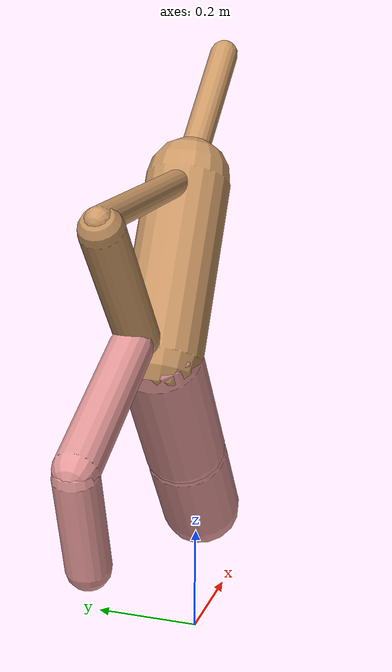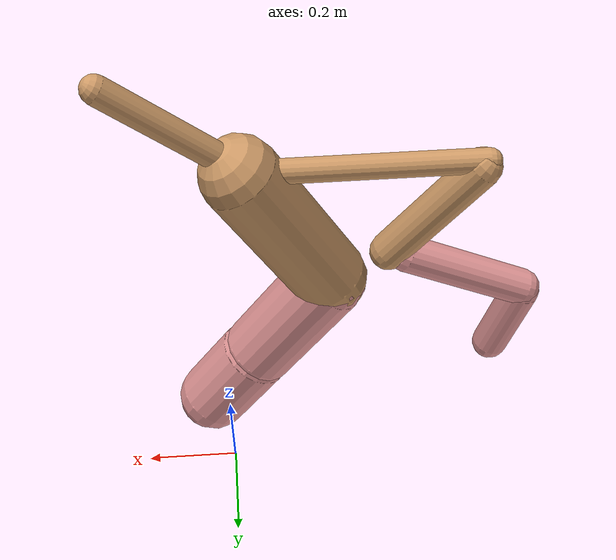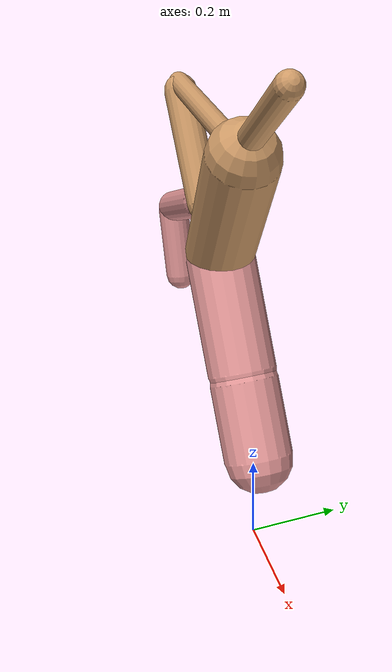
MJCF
<mujoco model="cheetah">
  <compiler angle="radian" coordinate="local" inertiafromgeom="true" settotalmass="14" />
  <default>
    <joint armature=".1" damping=".01" limited="true" solimplimit="0 .8 .03" solreflimit=".02 1" stiffness="8" />
    <geom conaffinity="0" condim="3" contype="1" friction="0.8 .1 .1" rgba="0.8 0.6 .4 1" solimp="0.0 0.8 0.01" solref="0.02 1" />
    <motor ctrllimited="true" ctrlrange="-1 1" />
  </default>
  <size nstack="300000" nuser_geom="1" />
  <option gravity="0 0 -9.81" timestep="0.01" />
  <worldbody>
    <body name="torso" pos="0.0 0.0 0.894021721081447">
      <joint armature="0" axis="1 0 0" damping="0" limited="false" name="ignorex" pos="0 0 0" stiffness="0" type="slide" />
      <joint armature="0" axis="0 0 1" damping="0" limited="false" name="ignorez" pos="0 0 0" stiffness="0" type="slide" />
      <joint armature="0" axis="0 1 0" damping="0" limited="false" name="ignorey" pos="0 0 0" stiffness="0" type="hinge" />
      <geom fromto="-0.5 0.0 0.0 -0.05529930331360744 0.0 0.0" name="torso" size="0.023006676743469873" type="capsule" />
      <geom axisangle="0 1 0 .87" name="head" pos="0.04470069668639254 0.0 0.1" size="0.02575782834927133 0.15" type="capsule" />

      <body name="bthigh" pos="-.5 0 0">
        <joint axis="0 1 0" damping="6" name="bthigh" pos="0 0 0" range="-.52 1.05" stiffness="240" type="hinge" />
        <geom axisangle="0 1 0 -3.8" name="bthigh" pos="0.09028565514876695 0.0 -0.11737135169339703" size="0.03655808607235921 0.1290672898118197" type="capsule" />
        <body name="bshin" pos="0.1405713102975339 0.0 -0.22474270338679406">
          <joint axis="0 1 0" damping="4.5" name="bshin" pos="0 0 0" range="-.785 .785" stiffness="180" type="hinge" />
          <geom axisangle="0 1 0 -2.03" name="bshin" pos="-0.12525794908417603 0.0 -0.06262897454208802" rgba="0.9 0.6 0.6 1" size="0.03655808607235921 0.13351788601222728" type="capsule" />
          <body name="bfoot" pos="-0.25051589816835207 0.0 -0.12525794908417603">
            <joint axis="0 1 0" damping="3" name="bfoot" pos="0 0 0" range="-.4 .785" stiffness="120" type="hinge" />
            <geom axisangle="0 1 0 -.27" name="bfoot" pos="0.02694815485736739 0.0 -0.08713236737215457" rgba="0.9 0.6 0.6 1" size="0.03655808607235921 0.08367120856766243" type="capsule" />
            <inertial mass="10" />
          </body>
        </body>
      </body>
      <body name="fthigh" pos="-0.05529930331360744 0.0 0.0">
        <joint axis="0 1 0" damping="4.5" name="fthigh" pos="0 0 0" range="-1.5 0.8" stiffness="180" type="hinge" />
        <geom axisangle="0 1 0 .52" name="fthigh" pos="-0.08360076970241546 0.0 -0.14331560520414077" size="0.0742826204664598 0.1599925616148875" type="capsule" />
        <body name="fshin" pos="-0.16720153940483093 0.0 -0.28663121040828154">
          <joint axis="0 1 0" damping="3" name="fshin" pos="0 0 0" range="-1.2 1.1" stiffness="120" type="hinge" />
          <geom axisangle="0 1 0 -.6" name="fshin" pos="0.07759558138387457 0.0 -0.10744003576228785" rgba="0.9 0.6 0.6 1" size="0.0742826204664598 0.12751286865547426" type="capsule" />
          <body name="ffoot" pos="0.15519116276774914 0.0 -0.2148800715245757">
            <joint axis="0 1 0" damping="1.5" name="ffoot" pos="0 0 0" range="-3.1 -0.3" stiffness="60" type="hinge" />
            <geom axisangle="0 1 0 -.6" name="ffoot" pos="0.05268233294855146 0.0 -0.08195029569774673" rgba="0.9 0.6 0.6 1" size="0.0742826204664598 0.0842066113762566" type="capsule" />
            <inertial mass="10" />
          </body>
        </body>
      </body>
    </body>
  </worldbody>
  <actuator>
    <motor gear="120" joint="bthigh" name="bthigh" />
    <motor gear="90" joint="bshin" name="bshin" />
    <motor gear="60" joint="bfoot" name="bfoot" />
    <motor gear="120" joint="fthigh" name="fthigh" />
    <motor gear="60" joint="fshin" name="fshin" />
    <motor gear="30" joint="ffoot" name="ffoot" />
  </actuator>
</mujoco>
